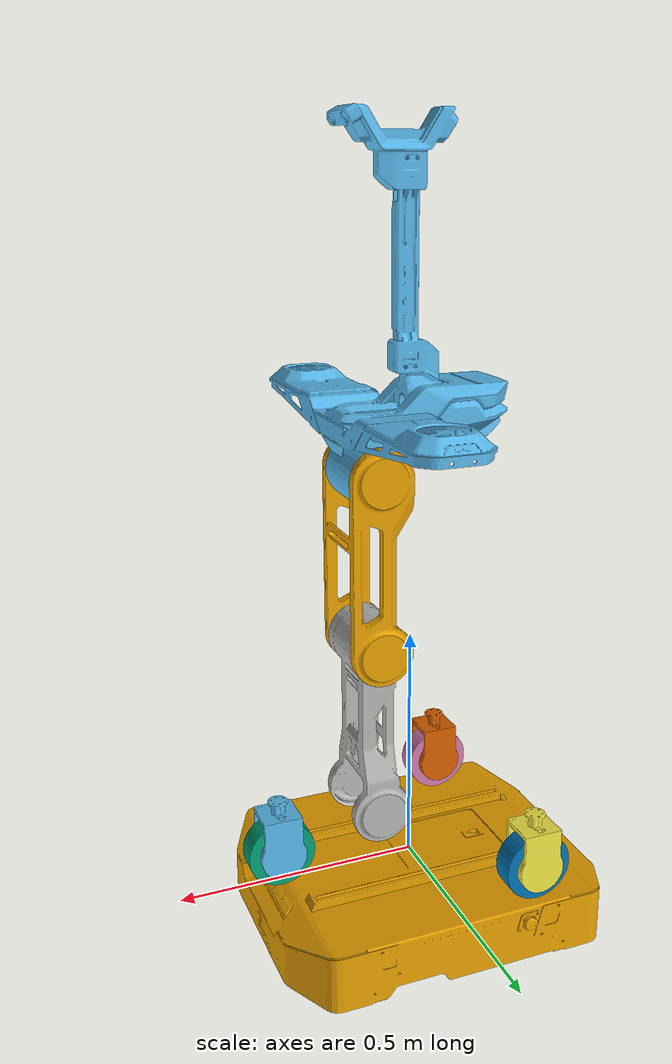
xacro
<?xml version="1.0" ?>
<!-- |    Complete Robot Description for Agibot G1                                     | -->
<!-- |    This file includes the base robot structure and both arms                    | -->
<robot name="Galaxea_R1_Lite" xmlns:xacro="http://www.ros.org/wiki/xacro">
	<xacro:property name="PI" value="3.1415926535897931"/>
	<xacro:arg name="type" default="base"/>

	<xacro:if value="${'$(arg type)' == 'base'}">
		<xacro:include filename="$(find galaxea_r1lite_description)/xacro/chassis.xacro"/>
		<link name="left_base_link"/>
		<link name="right_base_link"/>
	</xacro:if>

	<xacro:if value="${'$(arg type)' == 'a1x'}">
		<xacro:include filename="$(find galaxea_a1_description)/xacro/a1_x.xacro"/>
		<xacro:include filename="$(find galaxea_r1lite_description)/xacro/camera.xacro"/>
		<xacro:Arm name=""/>
		<xacro:camera name=""/>
	</xacro:if>

	<xacro:if value="${'$(arg type)' == 'a1y'}">
		<xacro:include filename="$(find galaxea_a1_description)/xacro/a1_y.xacro"/>
		<xacro:include filename="$(find galaxea_r1lite_description)/xacro/camera.xacro"/>
		<xacro:Arm name=""/>
		<xacro:camera name=""/>
	</xacro:if>
</robot>

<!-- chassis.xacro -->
<robot xmlns:xacro="http://www.ros.org/wiki/xacro">

	<link name="base_link">
		<inertial>
			<origin xyz="0.0718033657159837 -0.0016279349766449 0.128750850965126"/>
			<mass value="25.114"/>
			<inertia
					ixx="0.190993086908409"
					ixy="7.01153963312701E-05"
					ixz="-0.00785937977791519"
					iyy="0.152035922355254"
					iyz="-0.000494758898409346"
					izz="0.29121889848538"/>
		</inertial>
		<visual>
			<geometry>
				<mesh filename="file://$(find galaxea_r1lite_description)/meshes/visual/base.obj"/>
			</geometry>
		</visual>
		<collision>
			<geometry>
				<mesh filename="file://$(find galaxea_r1lite_description)/meshes/collision/base.stl"/>
			</geometry>
		</collision>
	</link>

	<link name="steer_motor_link1">
		<inertial>
			<origin xyz="-1.76196610579549E-07 -7.75116053202478E-05 -0.0852489956386505"/>
			<mass value="1.5"/>
			<inertia
					ixx="0.000338657650556839"
					ixy="6.14197589167664E-09"
					ixz="6.6056392682533E-09"
					iyy="0.000503900951850049"
					iyz="3.6051622873431E-08"
					izz="0.000211486748436409"/>
		</inertial>
		<visual>
			<geometry>
				<mesh filename="file://$(find galaxea_r1lite_description)/meshes/visual/steer_motor.obj"/>
			</geometry>
		</visual>
	</link>

	<joint name="steer_joint1" type="revolute">
		<origin xyz="0.29183 0 0.18165"/>
		<parent link="base_link"/>
		<child link="steer_motor_link1"/>
		<axis xyz="0 0 1"/>
		<limit lower="${-PI}" upper="${PI}" effort="20" velocity="20"/>
	</joint>

	<link name="wheel_motor_link1">
		<inertial>
			<origin xyz="0 -9.99250577455509E-13 -2.34534613952064E-15"/>
			<mass value="1.5"/>
			<inertia ixx="0.00104702497304016" ixy="2.02186210571336E-18" ixz="-8.67361737988254E-20" iyy="0.00181031135070458" iyz="3.54126040189266E-17" izz="0.00104702497304016"/>
		</inertial>
		<visual>
			<geometry>
				<mesh filename="file://$(find galaxea_r1lite_description)/meshes/visual/wheel.obj"/>
			</geometry>
		</visual>
		<collision>
			<origin rpy="${PI/2} 0 0"/>
			<geometry>
				<cylinder length="0.0485" radius="0.07"/>
			</geometry>
		</collision>
	</link>

	<joint name="wheel_joint1" type="continuous">
		<origin xyz="0 0 -0.11165"/>
		<parent link="steer_motor_link1"/>
		<child link="wheel_motor_link1"/>
		<axis xyz="0 1 0"/>
	</joint>

	<link name="steer_motor_link2">
		<inertial>
			<origin xyz="1.76196610607304E-07 7.75116053202962E-05 -0.0852489956386505"/>
			<mass value="1.5"/>
			<inertia ixx="0.000338657650556839" ixy="6.1419758916829E-09" ixz="-6.6056392682485E-09" iyy="0.000503900951850049" iyz="-3.60516228734399E-08" izz="0.000211486748436408"/>
		</inertial>
		<visual>
			<geometry>
				<mesh filename="file://$(find galaxea_r1lite_description)/meshes/visual/steer_motor.obj"/>
			</geometry>
		</visual>
	</link>

	<joint name="steer_joint2" type="revolute">
		<origin xyz="-0.16817 0.24 0.18165"/>
		<parent link="base_link"/>
		<child link="steer_motor_link2"/>
		<axis xyz="0 0 1"/>
		<limit lower="${-PI}" upper="${PI}" effort="20" velocity="20"/>
	</joint>

	<link name="wheel_motor_link2">
		<inertial>
			<origin xyz="2.77555756156289E-17 -1.94289029309402E-16 -2.34621350125863E-15"/>
			<mass value="1.5"/>
			<inertia ixx="0.00104702497304016" ixy="2.01102008398851E-18" ixz="-8.67361737988254E-20" iyy="0.00181031135070458" iyz="3.54092952964764E-17" izz="0.00104702497304016"/>
		</inertial>
		<visual>
			<geometry>
				<mesh filename="file://$(find galaxea_r1lite_description)/meshes/visual/wheel.obj"/>
			</geometry>
		</visual>
		<collision>
			<origin rpy="${PI/2} 0 0"/>
			<geometry>
				<cylinder length="0.0485" radius="0.07"/>
			</geometry>
		</collision>
	</link>

	<joint name="wheel_joint2" type="continuous">
		<origin xyz="0 0 -0.11165"/>
		<parent link="steer_motor_link2"/>
		<child link="wheel_motor_link2"/>
		<axis xyz="0 1 0"/>
	</joint>

	<link name="steer_motor_link3">
		<inertial>
			<origin xyz="1.76196610579549E-07 7.75116053202407E-05 -0.0852489956386505"/>
			<mass value="1.5"/>
			<inertia ixx="0.000338657650556839" ixy="6.14197589167356E-09" ixz="-6.60563926825079E-09" iyy="0.000503900951850049" iyz="-3.60516228734413E-08" izz="0.000211486748436408"/>
		</inertial>
		<visual>
			<geometry>
				<mesh filename="file://$(find galaxea_r1lite_description)/meshes/visual/steer_motor.obj"/>
			</geometry>
		</visual>
	</link>

	<joint name="steer_joint3" type="revolute">
		<origin xyz="-0.16817 -0.24 0.18165"/>
		<parent link="base_link"/>
		<child link="steer_motor_link3"/>
		<axis xyz="0 0 1"/>
		<limit lower="${-PI}" upper="${PI}" effort="20" velocity="20"/>
	</joint>

	<link name="wheel_motor_link3">
		<inertial>
			<origin xyz="0 -1.94289029309402E-16 -2.34274405430668E-15"/>
			<mass value="1.5"/>
			<inertia ixx="0.00104702497304016" ixy="2.00017806226365E-18" ixz="-8.67361737988255E-20" iyy="0.00181031135070458" iyz="3.53868224535946E-17" izz="0.00104702497304016"/>
		</inertial>
		<visual>
			<geometry>
				<mesh filename="file://$(find galaxea_r1lite_description)/meshes/visual/wheel.obj"/>
			</geometry>
		</visual>
		<collision>
			<origin rpy="${PI/2} 0 0"/>
			<geometry>
				<cylinder length="0.0485" radius="0.07"/>
			</geometry>
		</collision>
	</link>

	<joint name="wheel_joint3" type="continuous">
		<origin xyz="0 0 -0.11165"/>
		<parent link="steer_motor_link3"/>
		<child link="wheel_motor_link3"/>
		<axis xyz="0 1 0"/>
	</joint>

	<link name="torso_link1">
		<inertial>
			<origin xyz="0.00321196798398059 0.0116566745256909 0.100697975240297"/>
			<mass value="4.807"/>
			<inertia ixx="0.00310511493924453" ixy="3.89455548949465E-06" ixz="-0.000112029811012738" iyy="0.00326868759782864" iyz="4.14882596510336E-05" izz="0.000354993987137864"/>
		</inertial>
		<visual>
			<geometry>
				<mesh filename="file://$(find galaxea_r1lite_description)/meshes/visual/torso1.obj"/>
			</geometry>
		</visual>
		<collision>
			<geometry>
				<mesh filename="file://$(find galaxea_r1lite_description)/meshes/collision/torso1.stl"/>
			</geometry>
		</collision>
	</link>

	<joint name="torso_joint1" type="revolute">
		<origin xyz="0.091831 0 0.14865"/>
		<parent link="base_link"/>
		<child link="torso_link1"/>
		<axis xyz="0 1 0"/>
		<limit lower="${-PI/2}" upper="0.436333" effort="100" velocity="2.5"/>
	</joint>

	<link name="torso_link2">
		<inertial>
			<origin xyz="0.00627300956924463 0.00536087570300695 0.184118796618929"/>
			<mass value="2.779"/>
			<inertia ixx="0.0309540761907757" ixy="-5.57959685881806E-07" ixz="0.000297952176364751" iyy="0.032517017639908" iyz="9.00096610164517E-07" izz="0.00185256464591929"/>
		</inertial>
		<visual>
			<geometry>
				<mesh filename="file://$(find galaxea_r1lite_description)/meshes/visual/torso2.obj"/>
			</geometry>
		</visual>
		<collision>
			<geometry>
				<mesh filename="file://$(find galaxea_r1lite_description)/meshes/collision/torso2.stl"/>
			</geometry>
		</collision>
	</link>

	<joint name="torso_joint2" type="revolute">
		<origin xyz="0 0 0.35"/>
		<parent link="torso_link1"/>
		<child link="torso_link2"/>
		<axis xyz="0 1 0"/>
		<limit lower="-2.705262" upper="2.705262" effort="100" velocity="2.5"/>
	</joint>

	<link name="torso_link3">
		<inertial>
			<origin xyz="-0.0416383086406449 0.000484599582373232 0.051111008977659"/>
			<mass value="5.833"/>
			<inertia ixx="0.00647219350010978" ixy="-4.51460802718021E-07" ixz="-1.28687447342324E-05" iyy="0.0054231706909373" iyz="-1.67510995383755E-07" izz="0.00845061936347779"/>
		</inertial>
		<visual>
			<geometry>
				<mesh filename="file://$(find galaxea_r1lite_description)/meshes/visual/torso3.obj"/>
			</geometry>
		</visual>
		<collision>
			<geometry>
				<mesh filename="file://$(find galaxea_r1lite_description)/meshes/collision/torso3.stl"/>
			</geometry>
		</collision>
	</link>

	<joint name="torso_joint3" type="revolute">
		<origin xyz="9.6485E-05 0 0.35"/>
		<parent link="torso_link2"/>
		<child link="torso_link3"/>
		<axis xyz="0 -1 0"/>
		<limit lower="${-PI/2}" upper="${PI/2}" effort="100" velocity="2.5"/>
	</joint>

	<link name="camera_head_left_link"/>
	<joint name="camera_head_left_joint" type="fixed">
		<origin xyz="0.054947 0.03149 0.63214" rpy="${-2*PI/3} 4.1972E-05 ${-PI/2}"/>
		<parent link="torso_link3"/>
		<child link="camera_head_left_link"/>
	</joint>

	<link name="camera_head_right_link"/>
	<joint name="camera_head_right_joint" type="fixed">
		<origin xyz="0.054943 -0.03351 0.63214" rpy="${-2*PI/3} 4.1972E-05 ${-PI/2}"/>
		<parent link="torso_link3"/>
		<child link="camera_head_right_link"/>
	</joint>

	<joint name="left_arm_base_joint" type="fixed">
		<origin xyz="0 0.335 0.12306"/>
		<parent link="torso_link3"/>
		<child link="left_base_link"/>
	</joint>

	<joint name="right_arm_base_joint" type="fixed">
		<origin xyz="0 -0.335 0.12306"/>
		<parent link="torso_link3"/>
		<child link="right_base_link"/>
	</joint>
</robot>
